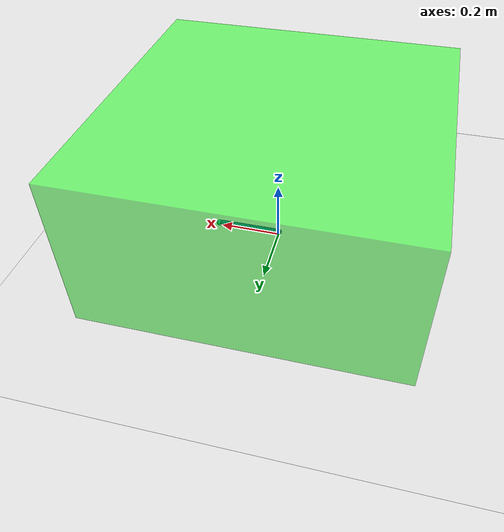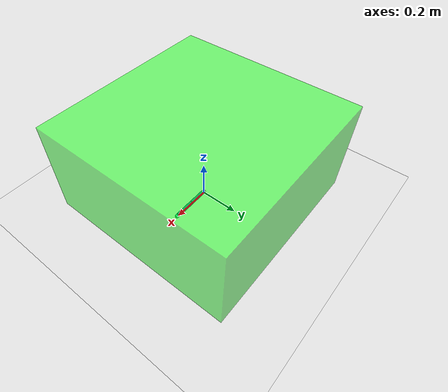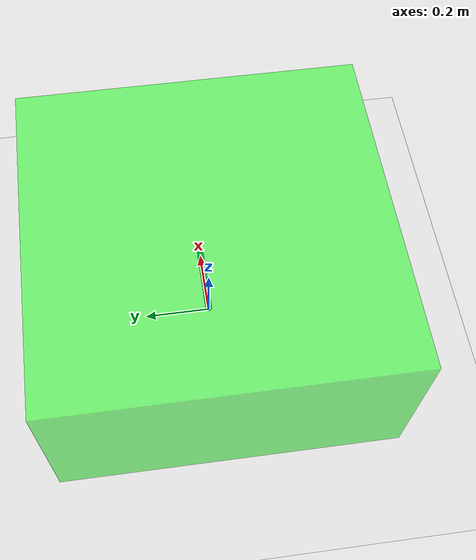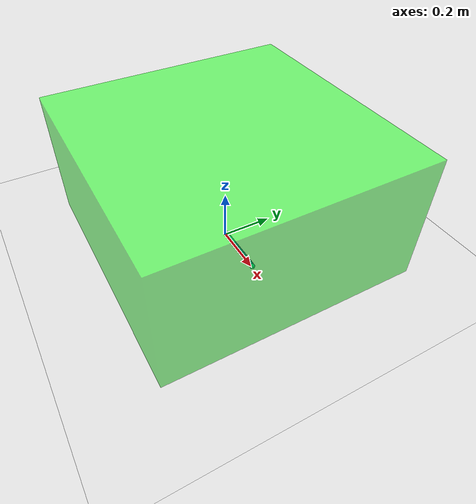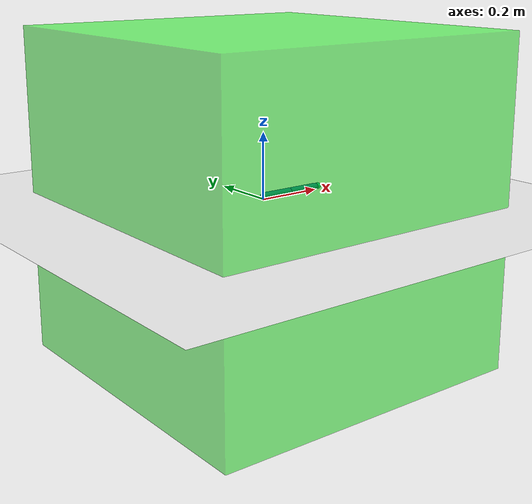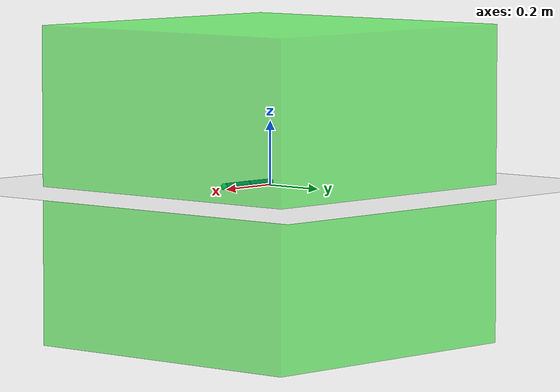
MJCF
<mujoco model="reacher">
	<compiler angle="radian" inertiafromgeom="true"/>
	<default>
		<joint armature="1" damping="1" limited="true"/>
		<!--geom contype="0" friction="1 0.1 0.1" rgba="0.7 0.7 0 1"/-->
	</default>
	<option gravity="0 0 -9.81" integrator="RK4" timestep="0.01"/>
	<worldbody>
		<!-- Arena -->
		<geom conaffinity="0" contype="0" name="ground" pos="0 0 0" rgba="0.9 0.9 0.9 1" size="1 1 10" type="plane"/>
		<!-- Arm -->
		<!--geom conaffinity="0" contype="0" fromto="0 0 0 0 0 0.02" name="root" rgba="0.9 0.4 0.6 1" size=".011" type="cylinder"/-->
		<body name="body0" pos="0 0 .01">
			<geom fromto="0 0 0 0.1 0 0" name="link0" rgba="0.0 0.4 0.6 1" size=".01" type="capsule"/>
			<joint axis="0 0 1" limited="false" name="joint0" pos="0 0 0" type="hinge"/>
			<body name="body1" pos="0.1 0 0">
				<joint axis="0 0 1" limited="true" name="joint1" pos="0 0 0" range="-3.0 3.0" type="hinge"/>
				<geom fromto="0 0 0 0.1 0 0" name="link1" rgba="0.0 0.4 0.6 1" size=".01" type="capsule"/>
				<body name="fingertip" pos="0.11 0 0">
					<geom contype="0" name="fingertip" pos="0 0 0" rgba="0.0 0.8 0.6 1" size=".01" type="sphere"/>
				</body>
			</body>
		</body>
		<!-- Target -->

        <body name="mocap_0" pos="0 0 0" mocap="true">
            <geom name='mocap_cube' type="box" size="0.01 0.01 0.01" rgba="1 0 0 0.5" />
        </body>
        <body name="mocap_1" pos="0 0 0" mocap="true">
            <site type="box" size="0.5 0.5 0.5" rgba="0 1 0 0.5" />
        </body>
        <body name="mocap_2" pos="0 0 0" mocap="true">
            <site type="box" size="0.5 0.5 0.5" rgba="1 1 0 0.5" />
        </body>
        <body name="mocap_3" pos="0 0 0" mocap="true">
            <site type="box" size="0.5 0.5 0.5" rgba="0 0 1 0.5" />
        </body>
        <body name="mocap_4" pos="0 0 0" mocap="true">
            <site type="box" size="0.5 0.5 0.5" rgba="0 1 1 0.5" />
        </body>
        <body name="mocap_5" pos="0 0 0" mocap="true">
            <site type="box" size="0.5 0.5 0.5" rgba="1 0 1 0.5" />
        </body>
	</worldbody>
	<actuator>
		<motor ctrllimited="true" ctrlrange="-1.0 1.0" gear="1.0" joint="joint0"/>
		<motor ctrllimited="true" ctrlrange="-1.0 1.0" gear="1.0" joint="joint1"/>
	</actuator>
</mujoco>
